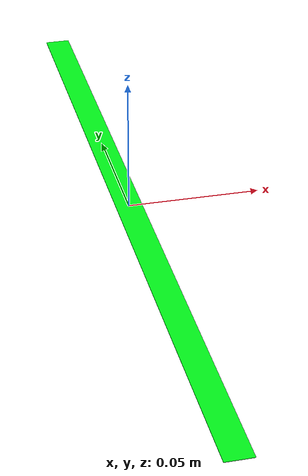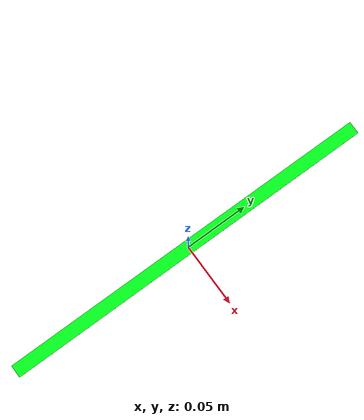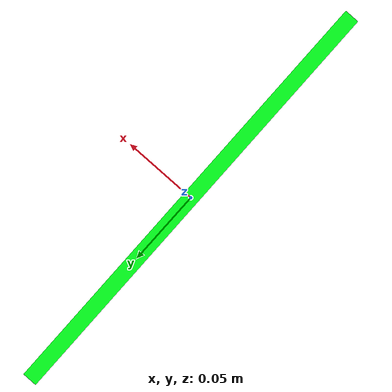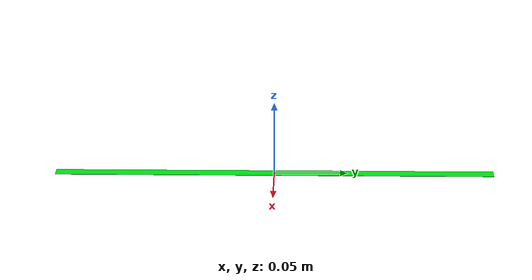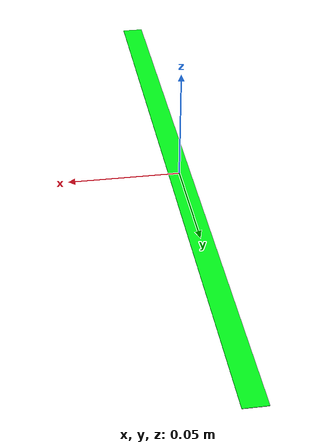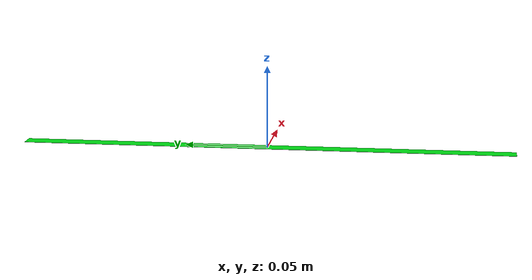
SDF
<?xml version='1.0'?>
<sdf version='1.6'>
  <model name='goal'>
    <static>true</static>
    <link name='link_3'>
      <pose frame=''>0 -0 0 0 -0 0</pose>
      <inertial>
        <mass>500</mass>
        <inertia>
          <ixx>1999.99</ixx>
          <ixy>2000</ixy>
          <ixz>2000</ixz>
          <iyy>2000</iyy>
          <iyz>2000</iyz>
          <izz>2000</izz>
        </inertia>
        <pose frame=''>0 0 0 0 -0 0</pose>
      </inertial>
      <gravity>1</gravity>
      <self_collide>0</self_collide>
      <kinematic>0</kinematic>
      <visual name='visual'>
        <pose frame=''>0 0 0 0 -0 0</pose>
        <geometry>
          <box>
            <size>0.01 0.3 0.0002</size>
          </box>
        </geometry>
        <material>
          <lighting>1</lighting>
          <script>
            <uri>file://media/materials/scripts/gazebo.material</uri>
            <name>Gazebo/Grey</name>
          </script>
          <shader type='pixel'>
            <normal_map>__default__</normal_map>
          </shader>
          <ambient>0.0 1.0 0.1 1</ambient>
          <diffuse>0.0 1.0 0.1 1</diffuse>
          <specular>0.01 0.01 0.01 1</specular>
          <emissive>0 0 0 1</emissive>
        </material>
        <transparency>0</transparency>
        <cast_shadows>1</cast_shadows>
      </visual>
    </link>
    <static>0</static>
    <allow_auto_disable>1</allow_auto_disable>
  </model>
</sdf>
